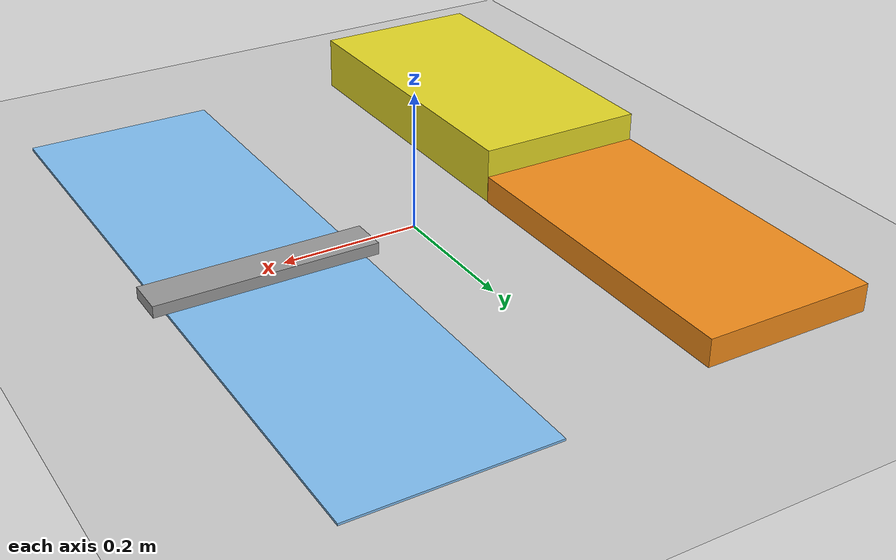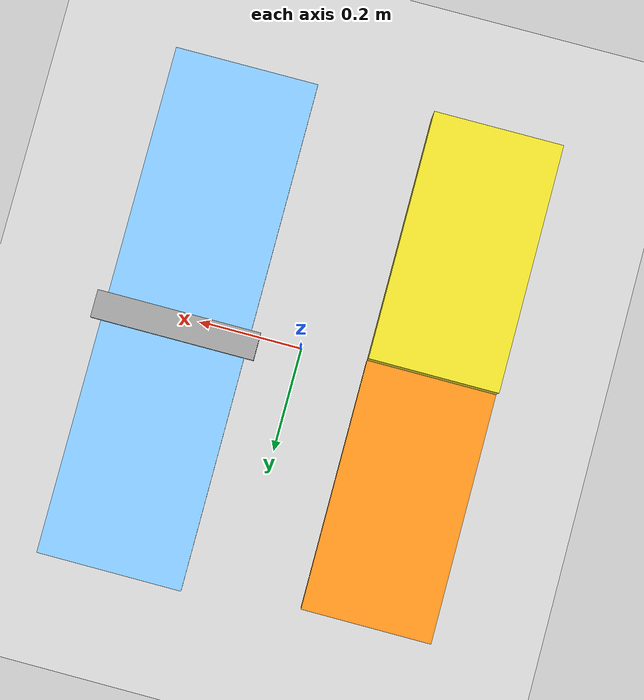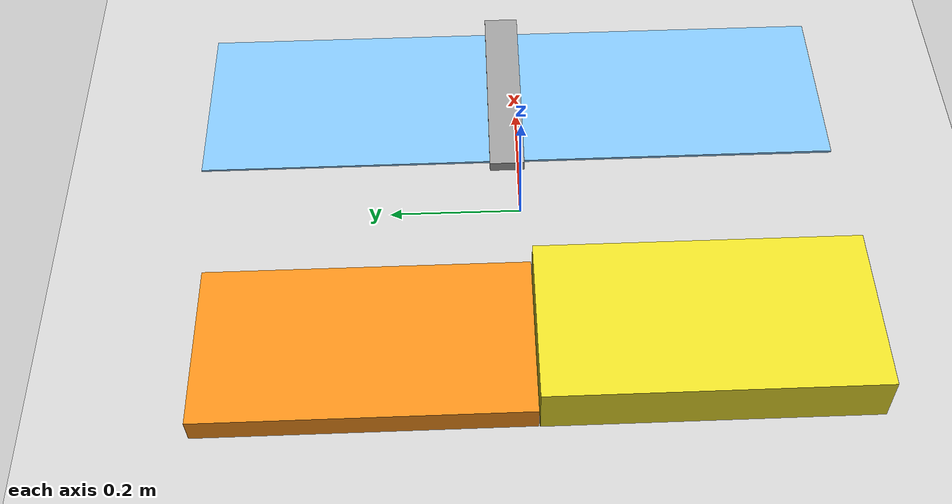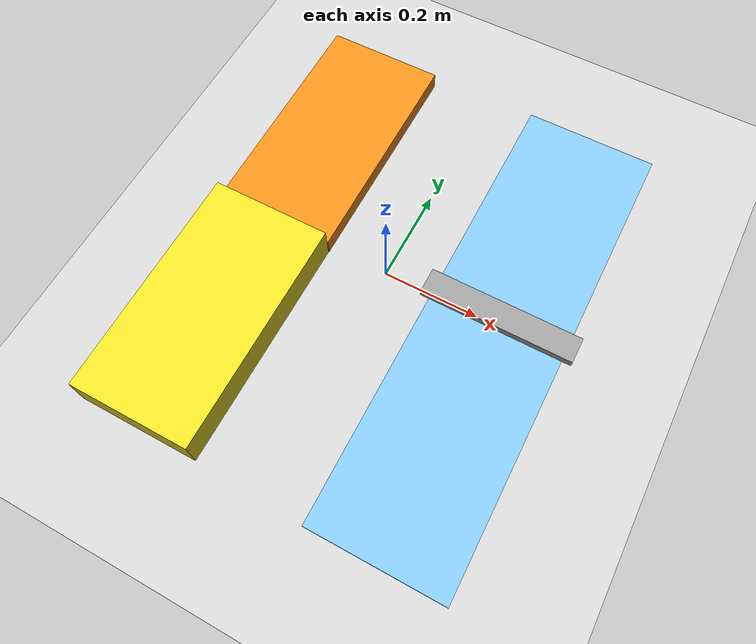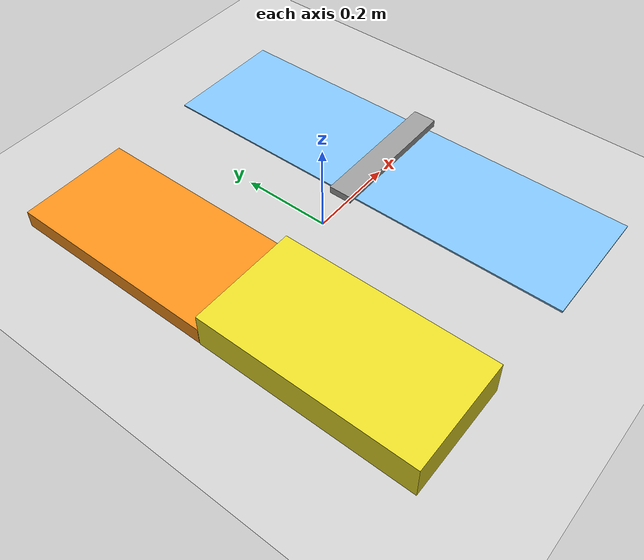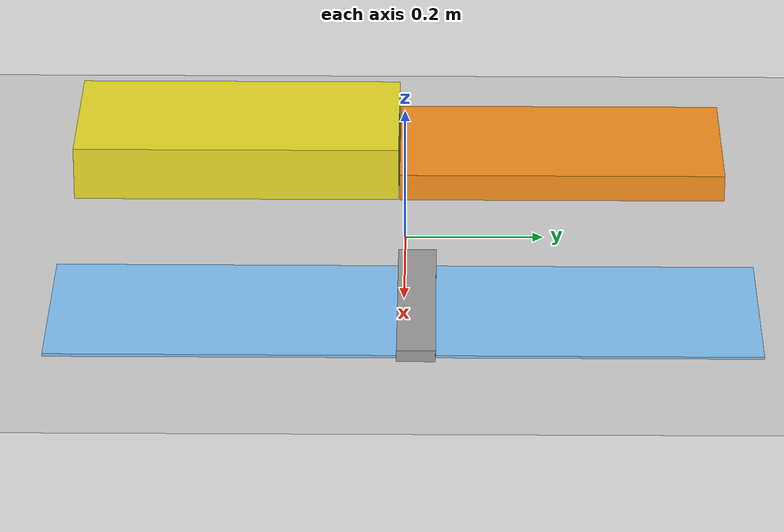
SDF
<sdf version="1.6">
 <world name="default">
  <light name="sun" type="directional">
   <pose>0 0 10 0 -0 0</pose>
   <diffuse>0.8 0.8 0.8 1</diffuse>
   <specular>0.2 0.2 0.2 1</specular>
   <attenuation>
    <range>1000</range>
    <constant>0.9</constant>
    <linear>0.01</linear>
    <quadratic>0.001</quadratic>
   </attenuation>
   <direction>-0.5 0.1 -0.9</direction>
  </light>
  <model name="ground_plane">
   <static>1</static>
   <link name="link">
    <collision name="collision">
     <geometry><plane><normal>0 0 1</normal><size>100 100</size></plane></geometry>
     <surface>
      <contact><collide_bitmask>65535</collide_bitmask></contact>
      <friction><ode><mu>100</mu><mu2>50</mu2></ode></friction>
     </surface>
    </collision>
    <visual name="visual">
     <cast_shadows>0</cast_shadows>
     <geometry><plane><normal>0 0 1</normal><size>100 100</size></plane></geometry>
     <material>
      <script><uri>file://media/materials/scripts/gazebo.material</uri><name>Gazebo/Grey</name></script>
     </material>
    </visual>
   </link>
  </model>
  <gravity>0 0 -9.8</gravity>
  <magnetic_field>6e-06 2.3e-05 -4.2e-05</magnetic_field>
  <atmosphere type="adiabatic"/>
  <physics name="default_physics" default="0" type="ode">
   <max_step_size>0.001</max_step_size>
   <real_time_factor>1</real_time_factor>
   <real_time_update_rate>1000</real_time_update_rate>
  </physics>
  <scene><ambient>0.4 0.4 0.4 1</ambient><background>0.7 0.7 0.7 1</background><shadows>1</shadows></scene>
  <audio><device>default</device></audio>
  <spherical_coordinates>
   <surface_model>EARTH_WGS84</surface_model>
   <latitude_deg>0</latitude_deg>
   <longitude_deg>0</longitude_deg>
   <elevation>0</elevation>
   <heading_deg>0</heading_deg>
  </spherical_coordinates>
  <model name="unit_box">
   <pose>0.240998 3e-06 -0.005231 -0.00109 -4.7e-05 -4.2e-05</pose>
   <link name="link">
    <inertial>
     <mass>1</mass>
     <inertia>
      <ixx>0.166667</ixx>
      <ixy>0</ixy>
      <ixz>0</ixz>
      <iyy>0.166667</iyy>
      <iyz>0</iyz>
      <izz>0.166667</izz>
     </inertia>
    </inertial>
    <collision name="collision"><geometry><box><size>0.282127 1 0.015105</size></box></geometry></collision>
    <visual name="visual">
     <geometry><box><size>0.282127 1 0.015105</size></box></geometry>
     <material>
      <script><name>Gazebo/SkyBlue</name><uri>file://media/materials/scripts/gazebo.material</uri></script>
     </material>
    </visual>
   </link>
  </model>
  <model name="unit_box_0">
   <pose>-0.251763 -0.25128 0.04 0 -0 2.4e-05</pose>
   <link name="link">
    <inertial>
     <mass>1</mass>
     <inertia>
      <ixx>0.166667</ixx>
      <ixy>0</ixy>
      <ixz>0</ixz>
      <iyy>0.166667</iyy>
      <iyz>0</iyz>
      <izz>0.166667</izz>
     </inertia>
    </inertial>
    <collision name="collision"><geometry><box><size>0.25 0.48 0.08</size></box></geometry></collision>
    <visual name="visual">
     <geometry><box><size>0.25 0.48 0.08</size></box></geometry>
     <material>
      <script><name>Gazebo/DarkYellow</name><uri>file://media/materials/scripts/gazebo.material</uri></script>
     </material>
    </visual>
   </link>
  </model>
  <model name="unit_box_1">
   <pose>-0.251068 0.230376 0.02 0 -0 -1.7e-05</pose>
   <link name="link">
    <inertial>
     <mass>1</mass>
     <inertia>
      <ixx>0.166667</ixx>
      <ixy>0</ixy>
      <ixz>0</ixz>
      <iyy>0.166667</iyy>
      <iyz>0</iyz>
      <izz>0.166667</izz>
     </inertia>
    </inertial>
    <collision name="collision"><geometry><box><size>0.25 0.48 0.04</size></box></geometry></collision>
    <visual name="visual">
     <geometry><box><size>0.25 0.48 0.04</size></box></geometry>
     <material>
      <script><name>Gazebo/Orange</name><uri>file://media/materials/scripts/gazebo.material</uri></script>
     </material>
    </visual>
   </link>
  </model>
  <model name="unit_box_2">
   <pose>0.240878 0.01792 0.010716 -0.001091 -4.7e-05 4e-06</pose>
   <link name="link">
    <inertial>
     <mass>1</mass>
     <inertia>
      <ixx>0.166667</ixx>
      <ixy>0</ixy>
      <ixz>0</ixz>
      <iyy>0.166667</iyy>
      <iyz>0</iyz>
      <izz>0.166667</izz>
     </inertia>
    </inertial>
    <collision name="collision">
     <geometry><box><size>0.319611 0.054168 0.016886</size></box></geometry>
    </collision>
    <visual name="visual">
     <geometry><box><size>0.319611 0.054168 0.016886</size></box></geometry>
     <material>
      <script><name>Gazebo/Grey</name><uri>file://media/materials/scripts/gazebo.material</uri></script>
     </material>
    </visual>
   </link>
  </model>
 </world>
</sdf>
